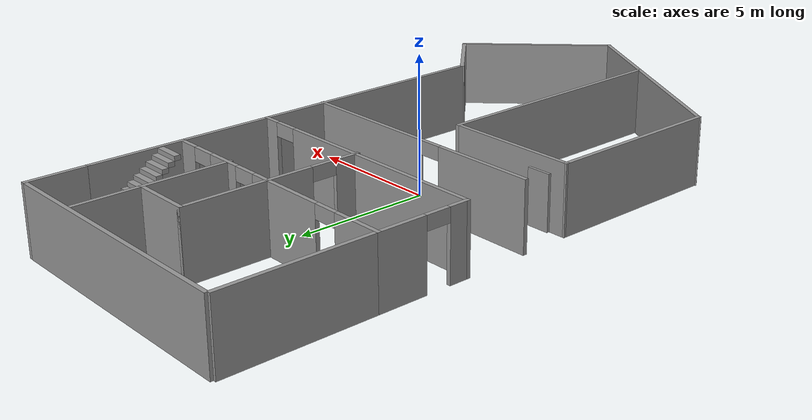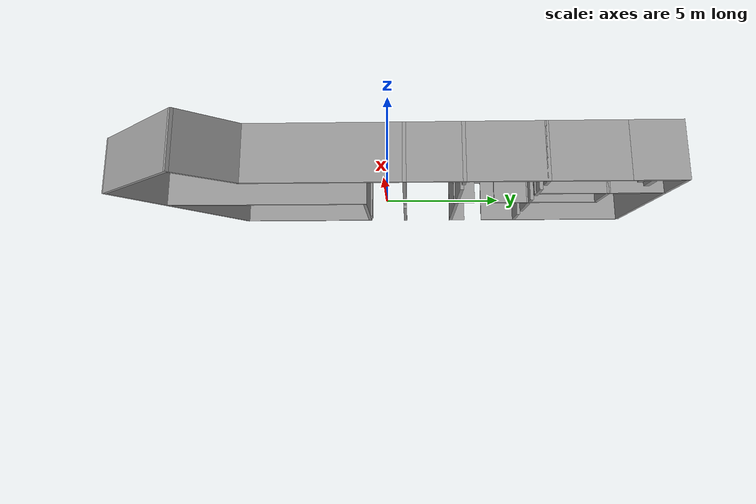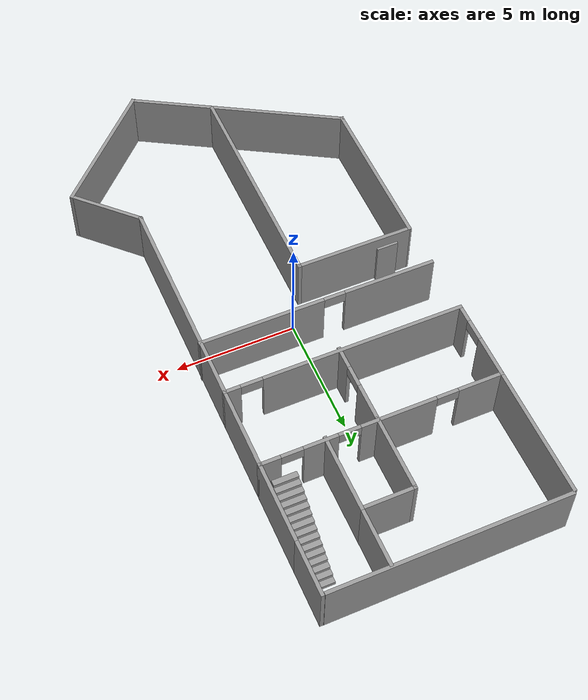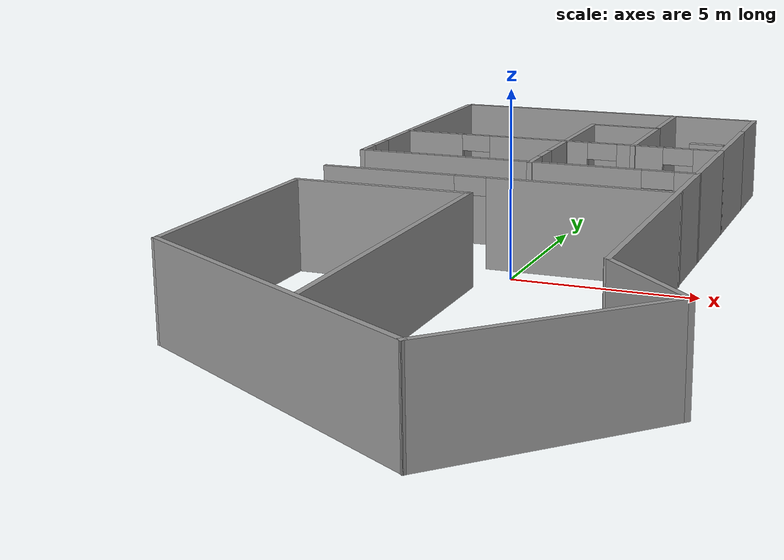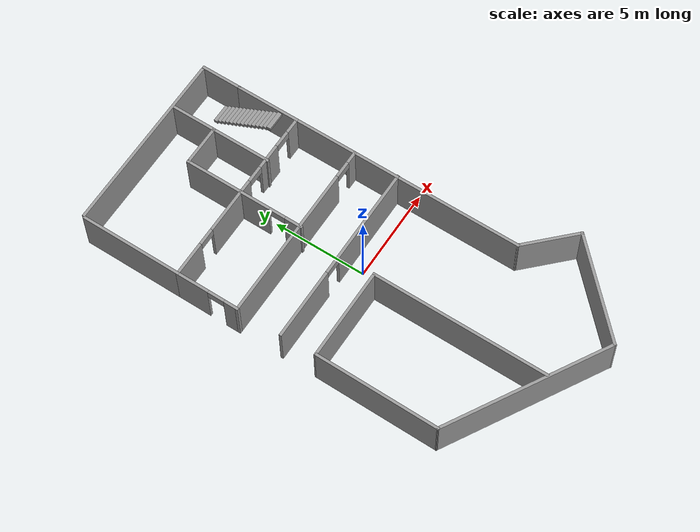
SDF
<?xml version='1.0'?>
<sdf version='1.6'>
  <model name='Room'>
    <pose frame=''>0.369495 -0.121362 0 0 -0 0</pose>
    <link name='Door_0'>
      <collision name='Door_0_Collision'>
        <geometry>
          <box>
            <size>0.9 0.17 2</size>
          </box>
        </geometry>
        <pose frame=''>0 0 1 0 -0 0</pose>
      </collision>
      <visual name='Door_0_Visual'>
        <pose frame=''>0 0 1 0 -0 0</pose>
        <geometry>
          <box>
            <size>0.9 0.17 2</size>
          </box>
        </geometry>
        <material>
          <script>
            <uri>file://media/materials/scripts/gazebo.material</uri>
            <name>Gazebo/Grey</name>
          </script>
        </material>
      </visual>
      <pose frame=''>-4.95251 -0.881824 0 0 -0 0</pose>
    </link>
    <link name='Stairs_1'>
      <visual name='Stairs_1_Visual_0'>
        <pose frame=''>3.19632 10.8278 0.083333 0 -0 0</pose>
        <geometry>
          <box>
            <size>1 0.233333 0.166667</size>
          </box>
        </geometry>
        <material>
          <script>
            <uri>file://media/materials/scripts/gazebo.material</uri>
            <name>Gazebo/Grey</name>
          </script>
          <ambient>1 1 1 1</ambient>
        </material>
        <meta>
          <layer>0</layer>
        </meta>
      </visual>
      <collision name='Stairs_1_Collision_0'>
        <geometry>
          <box>
            <size>1 0.233333 0.166667</size>
          </box>
        </geometry>
        <pose frame=''>3.19632 10.8278 0.083333 0 -0 0</pose>
      </collision>
      <visual name='Stairs_1_Visual_1'>
        <pose frame=''>3.19632 10.5944 0.25 0 -0 0</pose>
        <geometry>
          <box>
            <size>1 0.233333 0.166667</size>
          </box>
        </geometry>
        <material>
          <script>
            <uri>file://media/materials/scripts/gazebo.material</uri>
            <name>Gazebo/Grey</name>
          </script>
          <ambient>1 1 1 1</ambient>
        </material>
        <meta>
          <layer>0</layer>
        </meta>
      </visual>
      <collision name='Stairs_1_Collision_1'>
        <geometry>
          <box>
            <size>1 0.233333 0.166667</size>
          </box>
        </geometry>
        <pose frame=''>3.19632 10.5944 0.25 0 -0 0</pose>
      </collision>
      <visual name='Stairs_1_Visual_2'>
        <pose frame=''>3.19632 10.3611 0.416667 0 -0 0</pose>
        <geometry>
          <box>
            <size>1 0.233333 0.166667</size>
          </box>
        </geometry>
        <material>
          <script>
            <uri>file://media/materials/scripts/gazebo.material</uri>
            <name>Gazebo/Grey</name>
          </script>
          <ambient>1 1 1 1</ambient>
        </material>
        <meta>
          <layer>0</layer>
        </meta>
      </visual>
      <collision name='Stairs_1_Collision_2'>
        <geometry>
          <box>
            <size>1 0.233333 0.166667</size>
          </box>
        </geometry>
        <pose frame=''>3.19632 10.3611 0.416667 0 -0 0</pose>
      </collision>
      <visual name='Stairs_1_Visual_3'>
        <pose frame=''>3.19632 10.1278 0.583333 0 -0 0</pose>
        <geometry>
          <box>
            <size>1 0.233333 0.166667</size>
          </box>
        </geometry>
        <material>
          <script>
            <uri>file://media/materials/scripts/gazebo.material</uri>
            <name>Gazebo/Grey</name>
          </script>
          <ambient>1 1 1 1</ambient>
        </material>
        <meta>
          <layer>0</layer>
        </meta>
      </visual>
      <collision name='Stairs_1_Collision_3'>
        <geometry>
          <box>
            <size>1 0.233333 0.166667</size>
          </box>
        </geometry>
        <pose frame=''>3.19632 10.1278 0.583333 0 -0 0</pose>
      </collision>
      <visual name='Stairs_1_Visual_4'>
        <pose frame=''>3.19632 9.89444 0.75 0 -0 0</pose>
        <geometry>
          <box>
            <size>1 0.233333 0.166667</size>
          </box>
        </geometry>
        <material>
          <script>
            <uri>file://media/materials/scripts/gazebo.material</uri>
            <name>Gazebo/Grey</name>
          </script>
          <ambient>1 1 1 1</ambient>
        </material>
        <meta>
          <layer>0</layer>
        </meta>
      </visual>
      <collision name='Stairs_1_Collision_4'>
        <geometry>
          <box>
            <size>1 0.233333 0.166667</size>
          </box>
        </geometry>
        <pose frame=''>3.19632 9.89444 0.75 0 -0 0</pose>
      </collision>
      <visual name='Stairs_1_Visual_5'>
        <pose frame=''>3.19632 9.6611 0.916667 0 -0 0</pose>
        <geometry>
          <box>
            <size>1 0.233333 0.166667</size>
          </box>
        </geometry>
        <material>
          <script>
            <uri>file://media/materials/scripts/gazebo.material</uri>
            <name>Gazebo/Grey</name>
          </script>
          <ambient>1 1 1 1</ambient>
        </material>
        <meta>
          <layer>0</layer>
        </meta>
      </visual>
      <collision name='Stairs_1_Collision_5'>
        <geometry>
          <box>
            <size>1 0.233333 0.166667</size>
          </box>
        </geometry>
        <pose frame=''>3.19632 9.6611 0.916667 0 -0 0</pose>
      </collision>
      <visual name='Stairs_1_Visual_6'>
        <pose frame=''>3.19632 9.42777 1.08333 0 -0 0</pose>
        <geometry>
          <box>
            <size>1 0.233333 0.166667</size>
          </box>
        </geometry>
        <material>
          <script>
            <uri>file://media/materials/scripts/gazebo.material</uri>
            <name>Gazebo/Grey</name>
          </script>
          <ambient>1 1 1 1</ambient>
        </material>
        <meta>
          <layer>0</layer>
        </meta>
      </visual>
      <collision name='Stairs_1_Collision_6'>
        <geometry>
          <box>
            <size>1 0.233333 0.166667</size>
          </box>
        </geometry>
        <pose frame=''>3.19632 9.42777 1.08333 0 -0 0</pose>
      </collision>
      <visual name='Stairs_1_Visual_7'>
        <pose frame=''>3.19632 9.19444 1.25 0 -0 0</pose>
        <geometry>
          <box>
            <size>1 0.233333 0.166667</size>
          </box>
        </geometry>
        <material>
          <script>
            <uri>file://media/materials/scripts/gazebo.material</uri>
            <name>Gazebo/Grey</name>
          </script>
          <ambient>1 1 1 1</ambient>
        </material>
        <meta>
          <layer>0</layer>
        </meta>
      </visual>
      <collision name='Stairs_1_Collision_7'>
        <geometry>
          <box>
            <size>1 0.233333 0.166667</size>
          </box>
        </geometry>
        <pose frame=''>3.19632 9.19444 1.25 0 -0 0</pose>
      </collision>
      <visual name='Stairs_1_Visual_8'>
        <pose frame=''>3.19632 8.9611 1.41667 0 -0 0</pose>
        <geometry>
          <box>
            <size>1 0.233333 0.166667</size>
          </box>
        </geometry>
        <material>
          <script>
            <uri>file://media/materials/scripts/gazebo.material</uri>
            <name>Gazebo/Grey</name>
          </script>
          <ambient>1 1 1 1</ambient>
        </material>
        <meta>
          <layer>0</layer>
        </meta>
      </visual>
      <collision name='Stairs_1_Collision_8'>
        <geometry>
          <box>
            <size>1 0.233333 0.166667</size>
          </box>
        </geometry>
        <pose frame=''>3.19632 8.9611 1.41667 0 -0 0</pose>
      </collision>
      <visual name='Stairs_1_Visual_9'>
        <pose frame=''>3.19632 8.72777 1.58333 0 -0 0</pose>
        <geometry>
          <box>
            <size>1 0.233333 0.166667</size>
          </box>
        </geometry>
        <material>
          <script>
            <uri>file://media/materials/scripts/gazebo.material</uri>
            <name>Gazebo/Grey</name>
          </script>
          <ambient>1 1 1 1</ambient>
        </material>
        <meta>
          <layer>0</layer>
        </meta>
      </visual>
      <collision name='Stairs_1_Collision_9'>
        <geometry>
          <box>
            <size>1 0.233333 0.166667</size>
          </box>
        </geometry>
        <pose frame=''>3.19632 8.72777 1.58333 0 -0 0</pose>
      </collision>
      <visual name='Stairs_1_Visual_10'>
        <pose frame=''>3.19632 8.49444 1.75 0 -0 0</pose>
        <geometry>
          <box>
            <size>1 0.233333 0.166667</size>
          </box>
        </geometry>
        <material>
          <script>
            <uri>file://media/materials/scripts/gazebo.material</uri>
            <name>Gazebo/Grey</name>
          </script>
          <ambient>1 1 1 1</ambient>
        </material>
        <meta>
          <layer>0</layer>
        </meta>
      </visual>
      <collision name='Stairs_1_Collision_10'>
        <geometry>
          <box>
            <size>1 0.233333 0.166667</size>
          </box>
        </geometry>
        <pose frame=''>3.19632 8.49444 1.75 0 -0 0</pose>
      </collision>
      <visual name='Stairs_1_Visual_11'>
        <pose frame=''>3.19632 8.2611 1.91667 0 -0 0</pose>
        <geometry>
          <box>
            <size>1 0.233333 0.166667</size>
          </box>
        </geometry>
        <material>
          <script>
            <uri>file://media/materials/scripts/gazebo.material</uri>
            <name>Gazebo/Grey</name>
          </script>
          <ambient>1 1 1 1</ambient>
        </material>
        <meta>
          <layer>0</layer>
        </meta>
      </visual>
      <collision name='Stairs_1_Collision_11'>
        <geometry>
          <box>
            <size>1 0.233333 0.166667</size>
          </box>
        </geometry>
        <pose frame=''>3.19632 8.2611 1.91667 0 -0 0</pose>
      </collision>
      <visual name='Stairs_1_Visual_12'>
        <pose frame=''>3.19632 8.02777 2.08333 0 -0 0</pose>
        <geometry>
          <box>
            <size>1 0.233333 0.166667</size>
          </box>
        </geometry>
        <material>
          <script>
            <uri>file://media/materials/scripts/gazebo.material</uri>
            <name>Gazebo/Grey</name>
          </script>
          <ambient>1 1 1 1</ambient>
        </material>
        <meta>
          <layer>0</layer>
        </meta>
      </visual>
      <collision name='Stairs_1_Collision_12'>
        <geometry>
          <box>
            <size>1 0.233333 0.166667</size>
          </box>
        </geometry>
        <pose frame=''>3.19632 8.02777 2.08333 0 -0 0</pose>
      </collision>
      <visual name='Stairs_1_Visual_13'>
        <pose frame=''>3.19632 7.79444 2.25 0 -0 0</pose>
        <geometry>
          <box>
            <size>1 0.233333 0.166667</size>
          </box>
        </geometry>
        <material>
          <script>
            <uri>file://media/materials/scripts/gazebo.material</uri>
            <name>Gazebo/Grey</name>
          </script>
          <ambient>1 1 1 1</ambient>
        </material>
        <meta>
          <layer>0</layer>
        </meta>
      </visual>
      <collision name='Stairs_1_Collision_13'>
        <geometry>
          <box>
            <size>1 0.233333 0.166667</size>
          </box>
        </geometry>
        <pose frame=''>3.19632 7.79444 2.25 0 -0 0</pose>
      </collision>
      <visual name='Stairs_1_Visual_14'>
        <pose frame=''>3.19632 7.5611 2.41667 0 -0 0</pose>
        <geometry>
          <box>
            <size>1 0.233333 0.166667</size>
          </box>
        </geometry>
        <material>
          <script>
            <uri>file://media/materials/scripts/gazebo.material</uri>
            <name>Gazebo/Grey</name>
          </script>
          <ambient>1 1 1 1</ambient>
        </material>
        <meta>
          <layer>0</layer>
        </meta>
      </visual>
      <collision name='Stairs_1_Collision_14'>
        <geometry>
          <box>
            <size>1 0.233333 0.166667</size>
          </box>
        </geometry>
        <pose frame=''>3.19632 7.5611 2.41667 0 -0 0</pose>
      </collision>
    </link>
    <link name='Wall_0'>
      <collision name='Wall_0_Collision'>
        <geometry>
          <box>
            <size>9.25 0.15 2.5</size>
          </box>
        </geometry>
        <pose frame=''>0 0 1.25 0 -0 0</pose>
      </collision>
      <visual name='Wall_0_Visual'>
        <pose frame=''>0 0 1.25 0 -0 0</pose>
        <geometry>
          <box>
            <size>9.25 0.15 2.5</size>
          </box>
        </geometry>
        <material>
          <script>
            <uri>file://media/materials/scripts/gazebo.material</uri>
            <name>Gazebo/Grey</name>
          </script>
          <ambient>1 1 1 1</ambient>
        </material>
        <meta>
          <layer>0</layer>
        </meta>
      </visual>
      <pose frame=''>-2.07009 -9.82682 0 0 -0 -0.523599</pose>
    </link>
    <link name='Wall_1'>
      <collision name='Wall_1_Collision'>
        <geometry>
          <box>
            <size>6 0.15 2.5</size>
          </box>
        </geometry>
        <pose frame=''>0 0 1.25 0 -0 0</pose>
      </collision>
      <visual name='Wall_1_Visual'>
        <pose frame=''>0 0 1.25 0 -0 0</pose>
        <geometry>
          <box>
            <size>6 0.15 2.5</size>
          </box>
        </geometry>
        <material>
          <script>
            <uri>file://media/materials/scripts/gazebo.material</uri>
            <name>Gazebo/Grey</name>
          </script>
          <ambient>1 1 1 1</ambient>
        </material>
        <meta>
          <layer>0</layer>
        </meta>
      </visual>
      <pose frame=''>3.93861 -10.0335 0 0 -0 0.785398</pose>
    </link>
    <link name='Wall_11'>
      <pose frame=''>-1.08551 0.912176 0 0 -0 0</pose>
      <visual name='Wall_11_Visual_0'>
        <pose frame=''>-3.0715 0 1.25 0 -0 0</pose>
        <geometry>
          <box>
            <size>3.857 0.15 2.5</size>
          </box>
        </geometry>
        <material>
          <script>
            <uri>file://media/materials/scripts/gazebo.material</uri>
            <name>Gazebo/Grey</name>
          </script>
          <ambient>1 1 1 1</ambient>
        </material>
        <meta>
          <layer>0</layer>
        </meta>
      </visual>
      <collision name='Wall_11_Collision_0'>
        <geometry>
          <box>
            <size>3.857 0.15 2.5</size>
          </box>
        </geometry>
        <pose frame=''>-3.0715 0 1.25 0 -0 0</pose>
      </collision>
      <visual name='Wall_11_Visual_1'>
        <pose frame=''>2.3785 0 1.25 0 -0 0</pose>
        <geometry>
          <box>
            <size>5.243 0.15 2.5</size>
          </box>
        </geometry>
        <material>
          <script>
            <uri>file://media/materials/scripts/gazebo.material</uri>
            <name>Gazebo/Grey</name>
          </script>
          <ambient>1 1 1 1</ambient>
        </material>
        <meta>
          <layer>0</layer>
        </meta>
      </visual>
      <collision name='Wall_11_Collision_1'>
        <geometry>
          <box>
            <size>5.243 0.15 2.5</size>
          </box>
        </geometry>
        <pose frame=''>2.3785 0 1.25 0 -0 0</pose>
      </collision>
      <visual name='Wall_11_Visual_2'>
        <pose frame=''>-0.693 0 2.25 0 -0 0</pose>
        <geometry>
          <box>
            <size>0.9 0.15 0.5</size>
          </box>
        </geometry>
        <material>
          <script>
            <uri>file://media/materials/scripts/gazebo.material</uri>
            <name>Gazebo/Grey</name>
          </script>
          <ambient>1 1 1 1</ambient>
        </material>
        <meta>
          <layer>0</layer>
        </meta>
      </visual>
      <collision name='Wall_11_Collision_2'>
        <geometry>
          <box>
            <size>0.9 0.15 0.5</size>
          </box>
        </geometry>
        <pose frame=''>-0.693 0 2.25 0 -0 0</pose>
      </collision>
    </link>
    <link name='Wall_13'>
      <pose frame=''>-6.03514 5.00178 0 0 -0 1.5708</pose>
      <visual name='Wall_13_Visual_0'>
        <pose frame=''>-1.3508 0 1.25 0 -0 0</pose>
        <geometry>
          <box>
            <size>0.798394 0.15 2.5</size>
          </box>
        </geometry>
        <material>
          <script>
            <uri>file://media/materials/scripts/gazebo.material</uri>
            <name>Gazebo/Grey</name>
          </script>
          <ambient>1 1 1 1</ambient>
        </material>
        <meta>
          <layer>0</layer>
        </meta>
      </visual>
      <collision name='Wall_13_Collision_0'>
        <geometry>
          <box>
            <size>0.798394 0.15 2.5</size>
          </box>
        </geometry>
        <pose frame=''>-1.3508 0 1.25 0 -0 0</pose>
      </collision>
      <visual name='Wall_13_Visual_1'>
        <pose frame=''>0.849197 0 1.25 0 -0 0</pose>
        <geometry>
          <box>
            <size>1.80161 0.15 2.5</size>
          </box>
        </geometry>
        <material>
          <script>
            <uri>file://media/materials/scripts/gazebo.material</uri>
            <name>Gazebo/Grey</name>
          </script>
          <ambient>1 1 1 1</ambient>
        </material>
        <meta>
          <layer>0</layer>
        </meta>
      </visual>
      <collision name='Wall_13_Collision_1'>
        <geometry>
          <box>
            <size>1.80161 0.15 2.5</size>
          </box>
        </geometry>
        <pose frame=''>0.849197 0 1.25 0 -0 0</pose>
      </collision>
      <visual name='Wall_13_Visual_2'>
        <pose frame=''>-0.501606 0 2.25 0 -0 0</pose>
        <geometry>
          <box>
            <size>0.9 0.15 0.5</size>
          </box>
        </geometry>
        <material>
          <script>
            <uri>file://media/materials/scripts/gazebo.material</uri>
            <name>Gazebo/Grey</name>
          </script>
          <ambient>1 1 1 1</ambient>
        </material>
        <meta>
          <layer>0</layer>
        </meta>
      </visual>
      <collision name='Wall_13_Collision_2'>
        <geometry>
          <box>
            <size>0.9 0.15 0.5</size>
          </box>
        </geometry>
        <pose frame=''>-0.501606 0 2.25 0 -0 0</pose>
      </collision>
    </link>
    <link name='Wall_14'>
      <pose frame=''>-1.11014 6.67678 0 0 -0 0</pose>
      <visual name='Wall_14_Visual_0'>
        <pose frame=''>-4.04819 0 1.25 0 -0 0</pose>
        <geometry>
          <box>
            <size>1.90362 0.15 2.5</size>
          </box>
        </geometry>
        <material>
          <script>
            <uri>file://media/materials/scripts/gazebo.material</uri>
            <name>Gazebo/Grey</name>
          </script>
          <ambient>1 1 1 1</ambient>
        </material>
        <meta>
          <layer>0</layer>
        </meta>
      </visual>
      <collision name='Wall_14_Collision_0'>
        <geometry>
          <box>
            <size>1.90362 0.15 2.5</size>
          </box>
        </geometry>
        <pose frame=''>-4.04819 0 1.25 0 -0 0</pose>
      </collision>
      <visual name='Wall_14_Visual_1'>
        <pose frame=''>-0.643725 0 1.25 0 -0 0</pose>
        <geometry>
          <box>
            <size>3.1053 0.15 2.5</size>
          </box>
        </geometry>
        <material>
          <script>
            <uri>file://media/materials/scripts/gazebo.material</uri>
            <name>Gazebo/Grey</name>
          </script>
          <ambient>1 1 1 1</ambient>
        </material>
        <meta>
          <layer>0</layer>
        </meta>
      </visual>
      <collision name='Wall_14_Collision_1'>
        <geometry>
          <box>
            <size>3.1053 0.15 2.5</size>
          </box>
        </geometry>
        <pose frame=''>-0.643725 0 1.25 0 -0 0</pose>
      </collision>
      <visual name='Wall_14_Visual_2'>
        <pose frame=''>2.50727 0 1.25 0 -0 0</pose>
        <geometry>
          <box>
            <size>1.3967 0.15 2.5</size>
          </box>
        </geometry>
        <material>
          <script>
            <uri>file://media/materials/scripts/gazebo.material</uri>
            <name>Gazebo/Grey</name>
          </script>
          <ambient>1 1 1 1</ambient>
        </material>
        <meta>
          <layer>0</layer>
        </meta>
      </visual>
      <collision name='Wall_14_Collision_2'>
        <geometry>
          <box>
            <size>1.3967 0.15 2.5</size>
          </box>
        </geometry>
        <pose frame=''>2.50727 0 1.25 0 -0 0</pose>
      </collision>
      <visual name='Wall_14_Visual_3'>
        <pose frame=''>4.55281 0 1.25 0 -0 0</pose>
        <geometry>
          <box>
            <size>0.894375 0.15 2.5</size>
          </box>
        </geometry>
        <material>
          <script>
            <uri>file://media/materials/scripts/gazebo.material</uri>
            <name>Gazebo/Grey</name>
          </script>
          <ambient>1 1 1 1</ambient>
        </material>
        <meta>
          <layer>0</layer>
        </meta>
      </visual>
      <collision name='Wall_14_Collision_3'>
        <geometry>
          <box>
            <size>0.894375 0.15 2.5</size>
          </box>
        </geometry>
        <pose frame=''>4.55281 0 1.25 0 -0 0</pose>
      </collision>
      <visual name='Wall_14_Visual_4'>
        <pose frame=''>-2.64637 0 2.25 0 -0 0</pose>
        <geometry>
          <box>
            <size>0.9 0.15 0.5</size>
          </box>
        </geometry>
        <material>
          <script>
            <uri>file://media/materials/scripts/gazebo.material</uri>
            <name>Gazebo/Grey</name>
          </script>
          <ambient>1 1 1 1</ambient>
        </material>
        <meta>
          <layer>0</layer>
        </meta>
      </visual>
      <collision name='Wall_14_Collision_4'>
        <geometry>
          <box>
            <size>0.9 0.15 0.5</size>
          </box>
        </geometry>
        <pose frame=''>-2.64637 0 2.25 0 -0 0</pose>
      </collision>
      <visual name='Wall_14_Visual_5'>
        <pose frame=''>1.35893 0 2.25 0 -0 0</pose>
        <geometry>
          <box>
            <size>0.9 0.15 0.5</size>
          </box>
        </geometry>
        <material>
          <script>
            <uri>file://media/materials/scripts/gazebo.material</uri>
            <name>Gazebo/Grey</name>
          </script>
          <ambient>1 1 1 1</ambient>
        </material>
        <meta>
          <layer>0</layer>
        </meta>
      </visual>
      <collision name='Wall_14_Collision_5'>
        <geometry>
          <box>
            <size>0.9 0.15 0.5</size>
          </box>
        </geometry>
        <pose frame=''>1.35893 0 2.25 0 -0 0</pose>
      </collision>
      <visual name='Wall_14_Visual_6'>
        <pose frame=''>3.65563 0 2.25 0 -0 0</pose>
        <geometry>
          <box>
            <size>0.9 0.15 0.5</size>
          </box>
        </geometry>
        <material>
          <script>
            <uri>file://media/materials/scripts/gazebo.material</uri>
            <name>Gazebo/Grey</name>
          </script>
          <ambient>1 1 1 1</ambient>
        </material>
        <meta>
          <layer>0</layer>
        </meta>
      </visual>
      <collision name='Wall_14_Collision_6'>
        <geometry>
          <box>
            <size>0.9 0.15 0.5</size>
          </box>
        </geometry>
        <pose frame=''>3.65563 0 2.25 0 -0 0</pose>
      </collision>
    </link>
    <link name='Wall_15'>
      <collision name='Wall_15_Collision'>
        <geometry>
          <box>
            <size>3.5 0.15 2.5</size>
          </box>
        </geometry>
        <pose frame=''>0 0 1.25 0 -0 0</pose>
      </collision>
      <visual name='Wall_15_Visual'>
        <pose frame=''>0 0 1.25 0 -0 0</pose>
        <geometry>
          <box>
            <size>3.5 0.15 2.5</size>
          </box>
        </geometry>
        <material>
          <script>
            <uri>file://media/materials/scripts/gazebo.material</uri>
            <name>Gazebo/Grey</name>
          </script>
          <ambient>1 1 1 1</ambient>
        </material>
        <meta>
          <layer>0</layer>
        </meta>
      </visual>
      <pose frame=''>3.81486 5.00178 0 0 -0 -1.5708</pose>
    </link>
    <link name='Wall_17'>
      <pose frame=''>-0.90451 4.93318 0 0 -0 1.5708</pose>
      <visual name='Wall_17_Visual_0'>
        <pose frame=''>-1.2705 0 1.25 0 -0 0</pose>
        <geometry>
          <box>
            <size>0.959 0.15 2.5</size>
          </box>
        </geometry>
        <material>
          <script>
            <uri>file://media/materials/scripts/gazebo.material</uri>
            <name>Gazebo/Grey</name>
          </script>
          <ambient>1 1 1 1</ambient>
        </material>
        <meta>
          <layer>0</layer>
        </meta>
      </visual>
      <collision name='Wall_17_Collision_0'>
        <geometry>
          <box>
            <size>0.959 0.15 2.5</size>
          </box>
        </geometry>
        <pose frame=''>-1.2705 0 1.25 0 -0 0</pose>
      </collision>
      <visual name='Wall_17_Visual_1'>
        <pose frame=''>0.9295 0 1.25 0 -0 0</pose>
        <geometry>
          <box>
            <size>1.641 0.15 2.5</size>
          </box>
        </geometry>
        <material>
          <script>
            <uri>file://media/materials/scripts/gazebo.material</uri>
            <name>Gazebo/Grey</name>
          </script>
          <ambient>1 1 1 1</ambient>
        </material>
        <meta>
          <layer>0</layer>
        </meta>
      </visual>
      <collision name='Wall_17_Collision_1'>
        <geometry>
          <box>
            <size>1.641 0.15 2.5</size>
          </box>
        </geometry>
        <pose frame=''>0.9295 0 1.25 0 -0 0</pose>
      </collision>
      <visual name='Wall_17_Visual_2'>
        <pose frame=''>-0.341 0 2.25 0 -0 0</pose>
        <geometry>
          <box>
            <size>0.9 0.15 0.5</size>
          </box>
        </geometry>
        <material>
          <script>
            <uri>file://media/materials/scripts/gazebo.material</uri>
            <name>Gazebo/Grey</name>
          </script>
          <ambient>1 1 1 1</ambient>
        </material>
        <meta>
          <layer>0</layer>
        </meta>
      </visual>
      <collision name='Wall_17_Collision_2'>
        <geometry>
          <box>
            <size>0.9 0.15 0.5</size>
          </box>
        </geometry>
        <pose frame=''>-0.341 0 2.25 0 -0 0</pose>
      </collision>
    </link>
    <link name='Wall_19'>
      <collision name='Wall_19_Collision'>
        <geometry>
          <box>
            <size>5.5 0.15 2.5</size>
          </box>
        </geometry>
        <pose frame=''>0 0 1.25 0 -0 0</pose>
      </collision>
      <visual name='Wall_19_Visual'>
        <pose frame=''>0 0 1.25 0 -0 0</pose>
        <geometry>
          <box>
            <size>5.5 0.15 2.5</size>
          </box>
        </geometry>
        <material>
          <script>
            <uri>file://media/materials/scripts/gazebo.material</uri>
            <name>Gazebo/Grey</name>
          </script>
          <ambient>1 1 1 1</ambient>
        </material>
        <meta>
          <layer>0</layer>
        </meta>
      </visual>
      <pose frame=''>-6.03514 9.35178 0 0 -0 1.5708</pose>
    </link>
    <link name='Wall_2'>
      <collision name='Wall_2_Collision'>
        <geometry>
          <box>
            <size>3.25 0.15 2.5</size>
          </box>
        </geometry>
        <pose frame=''>0 0 1.25 0 -0 0</pose>
      </collision>
      <visual name='Wall_2_Visual'>
        <pose frame=''>0 0 1.25 0 -0 0</pose>
        <geometry>
          <box>
            <size>3.25 0.15 2.5</size>
          </box>
        </geometry>
        <material>
          <script>
            <uri>file://media/materials/scripts/gazebo.material</uri>
            <name>Gazebo/Grey</name>
          </script>
          <ambient>1 1 1 1</ambient>
        </material>
        <meta>
          <layer>0</layer>
        </meta>
      </visual>
      <pose frame=''>4.91088 -6.86923 0 0 -0 2.35619</pose>
    </link>
    <link name='Wall_21'>
      <collision name='Wall_21_Collision'>
        <geometry>
          <box>
            <size>3.25 0.15 2.5</size>
          </box>
        </geometry>
        <pose frame=''>0 0 1.25 0 -0 0</pose>
      </collision>
      <visual name='Wall_21_Visual'>
        <pose frame=''>0 0 1.25 0 -0 0</pose>
        <geometry>
          <box>
            <size>3.25 0.15 2.5</size>
          </box>
        </geometry>
        <material>
          <script>
            <uri>file://media/materials/scripts/gazebo.material</uri>
            <name>Gazebo/Grey</name>
          </script>
          <ambient>1 1 1 1</ambient>
        </material>
        <meta>
          <layer>0</layer>
        </meta>
      </visual>
      <pose frame=''>-0.90451 8.15818 0 0 -0 1.5708</pose>
    </link>
    <link name='Wall_22'>
      <collision name='Wall_22_Collision'>
        <geometry>
          <box>
            <size>2.25 0.15 2.5</size>
          </box>
        </geometry>
        <pose frame=''>0 0 1.25 0 -0 0</pose>
      </collision>
      <visual name='Wall_22_Visual'>
        <pose frame=''>0 0 1.25 0 -0 0</pose>
        <geometry>
          <box>
            <size>2.25 0.15 2.5</size>
          </box>
        </geometry>
        <material>
          <script>
            <uri>file://media/materials/scripts/gazebo.material</uri>
            <name>Gazebo/Grey</name>
          </script>
          <ambient>1 1 1 1</ambient>
        </material>
        <meta>
          <layer>0</layer>
        </meta>
      </visual>
      <pose frame=''>0.14549 9.70818 0 0 -0 0</pose>
    </link>
    <link name='Wall_24'>
      <collision name='Wall_24_Collision'>
        <geometry>
          <box>
            <size>3.25 0.15 2.5</size>
          </box>
        </geometry>
        <pose frame=''>0 0 1.25 0 -0 0</pose>
      </collision>
      <visual name='Wall_24_Visual'>
        <pose frame=''>0 0 1.25 0 -0 0</pose>
        <geometry>
          <box>
            <size>3.25 0.15 2.5</size>
          </box>
        </geometry>
        <material>
          <script>
            <uri>file://media/materials/scripts/gazebo.material</uri>
            <name>Gazebo/Grey</name>
          </script>
          <ambient>1 1 1 1</ambient>
        </material>
        <meta>
          <layer>0</layer>
        </meta>
      </visual>
      <pose frame=''>1.19549 8.15818 0 0 -0 -1.5708</pose>
    </link>
    <link name='Wall_26'>
      <collision name='Wall_26_Collision'>
        <geometry>
          <box>
            <size>3.5 0.15 2.5</size>
          </box>
        </geometry>
        <pose frame=''>0 0 1.25 0 -0 0</pose>
      </collision>
      <visual name='Wall_26_Visual'>
        <pose frame=''>0 0 1.25 0 -0 0</pose>
        <geometry>
          <box>
            <size>3.5 0.15 2.5</size>
          </box>
        </geometry>
        <material>
          <script>
            <uri>file://media/materials/scripts/gazebo.material</uri>
            <name>Gazebo/Grey</name>
          </script>
          <ambient>1 1 1 1</ambient>
        </material>
        <meta>
          <layer>0</layer>
        </meta>
      </visual>
      <pose frame=''>3.81486 8.35178 0 0 -0 1.5708</pose>
    </link>
    <link name='Wall_28'>
      <collision name='Wall_28_Collision'>
        <geometry>
          <box>
            <size>9.75 0.15 2.5</size>
          </box>
        </geometry>
        <pose frame=''>0 0 1.25 0 -0 0</pose>
      </collision>
      <visual name='Wall_28_Visual'>
        <pose frame=''>0 0 1.25 0 -0 0</pose>
        <geometry>
          <box>
            <size>9.75 0.15 2.5</size>
          </box>
        </geometry>
        <material>
          <script>
            <uri>file://media/materials/scripts/gazebo.material</uri>
            <name>Gazebo/Grey</name>
          </script>
          <ambient>1 1 1 1</ambient>
        </material>
        <meta>
          <layer>0</layer>
        </meta>
      </visual>
      <pose frame=''>-1.14196 12.1329 0 0 -0 0</pose>
    </link>
    <link name='Wall_3'>
      <collision name='Wall_3_Collision'>
        <geometry>
          <box>
            <size>9.25 0.15 2.5</size>
          </box>
        </geometry>
        <pose frame=''>0 0 1.25 0 -0 0</pose>
      </collision>
      <visual name='Wall_3_Visual'>
        <pose frame=''>0 0 1.25 0 -0 0</pose>
        <geometry>
          <box>
            <size>9.25 0.15 2.5</size>
          </box>
        </geometry>
        <material>
          <script>
            <uri>file://media/materials/scripts/gazebo.material</uri>
            <name>Gazebo/Grey</name>
          </script>
          <ambient>1 1 1 1</ambient>
        </material>
        <meta>
          <layer>0</layer>
        </meta>
      </visual>
      <pose frame=''>3.81486 -1.22322 0 0 -0 1.5708</pose>
    </link>
    <link name='Wall_32'>
      <collision name='Wall_32_Collision'>
        <geometry>
          <box>
            <size>2.25 0.15 2.5</size>
          </box>
        </geometry>
        <pose frame=''>0 0 1.25 0 -0 0</pose>
      </collision>
      <visual name='Wall_32_Visual'>
        <pose frame=''>0 0 1.25 0 -0 0</pose>
        <geometry>
          <box>
            <size>2.25 0.15 2.5</size>
          </box>
        </geometry>
        <material>
          <script>
            <uri>file://media/materials/scripts/gazebo.material</uri>
            <name>Gazebo/Grey</name>
          </script>
          <ambient>1 1 1 1</ambient>
        </material>
        <meta>
          <layer>0</layer>
        </meta>
      </visual>
      <pose frame=''>3.81486 11.0768 0 0 -0 1.5708</pose>
    </link>
    <link name='Wall_35'>
      <collision name='Wall_35_Collision'>
        <geometry>
          <box>
            <size>2.5 0.15 2.5</size>
          </box>
        </geometry>
        <pose frame=''>0 0 1.25 0 -0 0</pose>
      </collision>
      <visual name='Wall_35_Visual'>
        <pose frame=''>0 0 1.25 0 -0 0</pose>
        <geometry>
          <box>
            <size>2.5 0.15 2.5</size>
          </box>
        </geometry>
        <material>
          <script>
            <uri>file://media/materials/scripts/gazebo.material</uri>
            <name>Gazebo/Grey</name>
          </script>
          <ambient>1 1 1 1</ambient>
        </material>
        <meta>
          <layer>0</layer>
        </meta>
      </visual>
      <pose frame=''>1.19549 10.8832 0 0 -0 1.5708</pose>
    </link>
    <link name='Wall_4'>
      <pose frame=''>-1.11014 3.32678 0 0 -0 3.14159</pose>
      <visual name='Wall_4_Visual_0'>
        <pose frame=''>-4.64481 0 1.25 0 -0 0</pose>
        <geometry>
          <box>
            <size>0.710375 0.15 2.5</size>
          </box>
        </geometry>
        <material>
          <script>
            <uri>file://media/materials/scripts/gazebo.material</uri>
            <name>Gazebo/Grey</name>
          </script>
          <ambient>1 1 1 1</ambient>
        </material>
        <meta>
          <layer>0</layer>
        </meta>
      </visual>
      <collision name='Wall_4_Collision_0'>
        <geometry>
          <box>
            <size>0.710375 0.15 2.5</size>
          </box>
        </geometry>
        <pose frame=''>-4.64481 0 1.25 0 -0 0</pose>
      </collision>
      <visual name='Wall_4_Visual_1'>
        <pose frame=''>0.805187 0 1.25 0 -0 0</pose>
        <geometry>
          <box>
            <size>8.38963 0.15 2.5</size>
          </box>
        </geometry>
        <material>
          <script>
            <uri>file://media/materials/scripts/gazebo.material</uri>
            <name>Gazebo/Grey</name>
          </script>
          <ambient>1 1 1 1</ambient>
        </material>
        <meta>
          <layer>0</layer>
        </meta>
      </visual>
      <collision name='Wall_4_Collision_1'>
        <geometry>
          <box>
            <size>8.38963 0.15 2.5</size>
          </box>
        </geometry>
        <pose frame=''>0.805187 0 1.25 0 -0 0</pose>
      </collision>
      <visual name='Wall_4_Visual_2'>
        <pose frame=''>-3.83962 0 2.25 0 -0 0</pose>
        <geometry>
          <box>
            <size>0.9 0.15 0.5</size>
          </box>
        </geometry>
        <material>
          <script>
            <uri>file://media/materials/scripts/gazebo.material</uri>
            <name>Gazebo/Grey</name>
          </script>
          <ambient>1 1 1 1</ambient>
        </material>
        <meta>
          <layer>0</layer>
        </meta>
      </visual>
      <collision name='Wall_4_Collision_2'>
        <geometry>
          <box>
            <size>0.9 0.15 0.5</size>
          </box>
        </geometry>
        <pose frame=''>-3.83962 0 2.25 0 -0 0</pose>
      </collision>
    </link>
    <link name='Wall_6'>
      <collision name='Wall_6_Collision'>
        <geometry>
          <box>
            <size>6.72816 0.15 2.5</size>
          </box>
        </geometry>
        <pose frame=''>0 0 1.25 0 -0 0</pose>
      </collision>
      <visual name='Wall_6_Visual'>
        <pose frame=''>0 0 1.25 0 -0 0</pose>
        <geometry>
          <box>
            <size>6.72816 0.15 2.5</size>
          </box>
        </geometry>
        <material>
          <script>
            <uri>file://media/materials/scripts/gazebo.material</uri>
            <name>Gazebo/Grey</name>
          </script>
          <ambient>1 1 1 1</ambient>
        </material>
        <meta>
          <layer>0</layer>
        </meta>
      </visual>
      <pose frame=''>-5.98751 -4.26282 0 0 -0 -1.57779</pose>
    </link>
    <link name='Wall_8'>
      <collision name='Wall_8_Collision'>
        <geometry>
          <box>
            <size>5 0.15 2.5</size>
          </box>
        </geometry>
        <pose frame=''>0 0 1.25 0 -0 0</pose>
      </collision>
      <visual name='Wall_8_Visual'>
        <pose frame=''>0 0 1.25 0 -0 0</pose>
        <geometry>
          <box>
            <size>5 0.15 2.5</size>
          </box>
        </geometry>
        <material>
          <script>
            <uri>file://media/materials/scripts/gazebo.material</uri>
            <name>Gazebo/Grey</name>
          </script>
          <ambient>1 1 1 1</ambient>
        </material>
        <meta>
          <layer>0</layer>
        </meta>
      </visual>
      <pose frame=''>-3.53951 -0.973824 0 0 -0 0</pose>
    </link>
    <link name='Wall_9'>
      <collision name='Wall_9_Collision'>
        <geometry>
          <box>
            <size>9.5 0.15 2.5</size>
          </box>
        </geometry>
        <pose frame=''>0 0 1.25 0 -0 0</pose>
      </collision>
      <visual name='Wall_9_Visual'>
        <pose frame=''>0 0 1.25 0 -0 0</pose>
        <geometry>
          <box>
            <size>9.5 0.15 2.5</size>
          </box>
        </geometry>
        <material>
          <script>
            <uri>file://media/materials/scripts/gazebo.material</uri>
            <name>Gazebo/Grey</name>
          </script>
          <ambient>1 1 1 1</ambient>
        </material>
        <meta>
          <layer>0</layer>
        </meta>
      </visual>
      <pose frame=''>-1.11451 -5.64882 0 0 -0 -1.5708</pose>
    </link>
    <static>1</static>
  </model>
</sdf>
